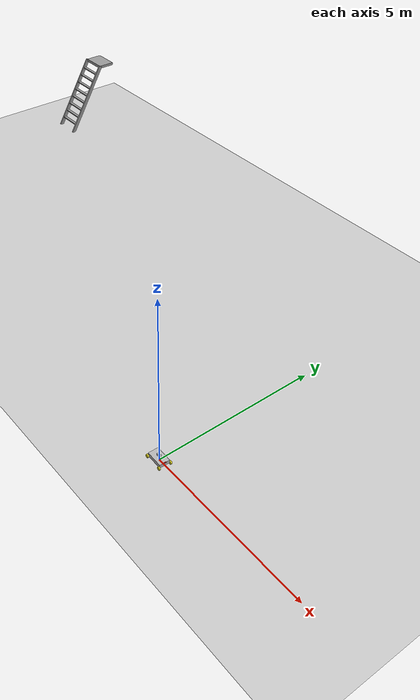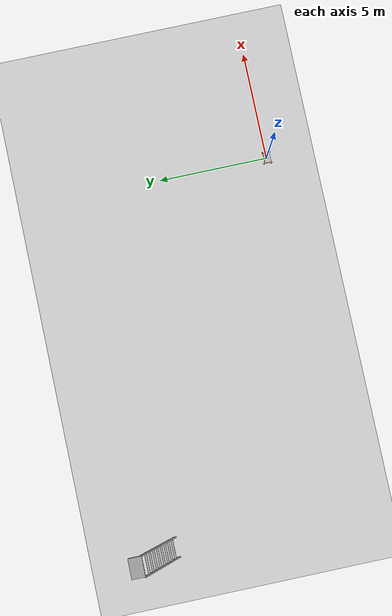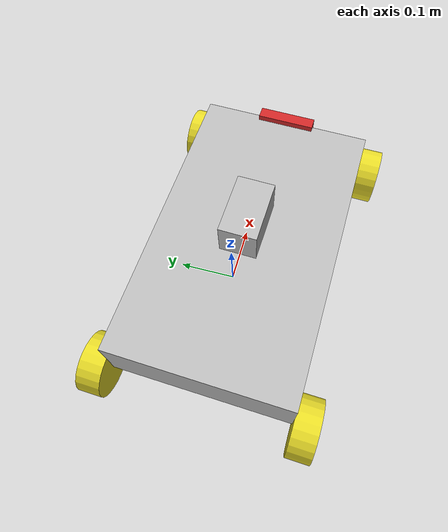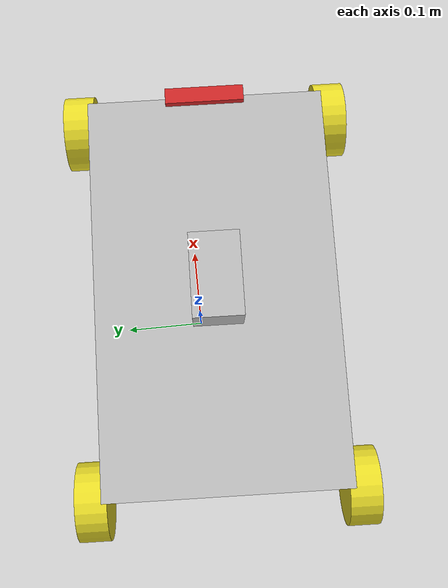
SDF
<sdf version="1.7">
 <world name="default">
  <light name="sun" type="directional">
   <pose>0 0 10 0 -0 0</pose>
   <diffuse>0.8 0.8 0.8 1</diffuse>
   <specular>0.2 0.2 0.2 1</specular>
   <attenuation>
    <range>1000</range>
    <constant>0.9</constant>
    <linear>0.01</linear>
    <quadratic>0.001</quadratic>
   </attenuation>
   <direction>-0.5 0.1 -0.9</direction>
   <spot><inner_angle>0</inner_angle><outer_angle>0</outer_angle><falloff>0</falloff></spot>
  </light>
  <model name="ground_plane">
   <static>1</static>
   <link name="link">
    <collision name="collision">
     <geometry><plane><normal>0 0 1</normal><size>100 100</size></plane></geometry>
     <surface><friction><ode><mu>100</mu><mu2>50</mu2></ode></friction></surface>
    </collision>
    <visual name="visual">
     <cast_shadows>0</cast_shadows>
     <geometry><plane><normal>0 0 1</normal><size>100 100</size></plane></geometry>
     <material>
      <script><uri>file://media/materials/scripts/gazebo.material</uri><name>Gazebo/Grey</name></script>
     </material>
    </visual>
   </link>
  </model>
  <gravity>0 0 -9.8</gravity>
  <magnetic_field>6e-06 2.3e-05 -4.2e-05</magnetic_field>
  <atmosphere type="adiabatic"/>
  <physics type="ode">
   <max_step_size>0.001</max_step_size>
   <real_time_factor>1</real_time_factor>
   <real_time_update_rate>1000</real_time_update_rate>
  </physics>
  <scene><ambient>0.4 0.4 0.4 1</ambient><background>0.7 0.7 0.7 1</background><shadows>1</shadows></scene>
  <audio><device>default</device></audio>
  <spherical_coordinates>
   <surface_model>EARTH_WGS84</surface_model>
   <latitude_deg>0</latitude_deg>
   <longitude_deg>0</longitude_deg>
   <elevation>0</elevation>
   <heading_deg>0</heading_deg>
  </spherical_coordinates>
  <model name="ladder_60deg_0rails">
   <static>1</static>
   <link name="step0">
    <pose>0 0.15396 0.266667 0 -0 0</pose>
    <inertial>
     <mass>9.75482</mass>
     <inertia>
      <ixx>0.00957124</ixx>
      <iyy>0.65963</iyy>
      <izz>0.666842</izz>
      <ixy>0</ixy>
      <ixz>0</ixz>
      <iyz>0</iyz>
     </inertia>
    </inertial>
    <collision name="collision"><geometry><box><size>0.9 0.1016 0.0381</size></box></geometry></collision>
    <visual name="visual">
     <geometry><box><size>0.9 0.1016 0.0381</size></box></geometry>
     <material>
      <script><uri>file://media/materials/scripts/gazebo.material</uri><name>Gazebo/Grey</name></script>
     </material>
    </visual>
   </link>
   <link name="step1">
    <pose>0 0.30792 0.533333 0 -0 0</pose>
    <inertial>
     <mass>9.75482</mass>
     <inertia>
      <ixx>0.00957124</ixx>
      <iyy>0.65963</iyy>
      <izz>0.666842</izz>
      <ixy>0</ixy>
      <ixz>0</ixz>
      <iyz>0</iyz>
     </inertia>
    </inertial>
    <collision name="collision"><geometry><box><size>0.9 0.1016 0.0381</size></box></geometry></collision>
    <visual name="visual">
     <geometry><box><size>0.9 0.1016 0.0381</size></box></geometry>
     <material>
      <script><uri>file://media/materials/scripts/gazebo.material</uri><name>Gazebo/Grey</name></script>
     </material>
    </visual>
   </link>
   <link name="step2">
    <pose>0 0.46188 0.8 0 -0 0</pose>
    <inertial>
     <mass>9.75482</mass>
     <inertia>
      <ixx>0.00957124</ixx>
      <iyy>0.65963</iyy>
      <izz>0.666842</izz>
      <ixy>0</ixy>
      <ixz>0</ixz>
      <iyz>0</iyz>
     </inertia>
    </inertial>
    <collision name="collision"><geometry><box><size>0.9 0.1016 0.0381</size></box></geometry></collision>
    <visual name="visual">
     <geometry><box><size>0.9 0.1016 0.0381</size></box></geometry>
     <material>
      <script><uri>file://media/materials/scripts/gazebo.material</uri><name>Gazebo/Grey</name></script>
     </material>
    </visual>
   </link>
   <link name="step3">
    <pose>0 0.61584 1.06667 0 -0 0</pose>
    <inertial>
     <mass>9.75482</mass>
     <inertia>
      <ixx>0.00957124</ixx>
      <iyy>0.65963</iyy>
      <izz>0.666842</izz>
      <ixy>0</ixy>
      <ixz>0</ixz>
      <iyz>0</iyz>
     </inertia>
    </inertial>
    <collision name="collision"><geometry><box><size>0.9 0.1016 0.0381</size></box></geometry></collision>
    <visual name="visual">
     <geometry><box><size>0.9 0.1016 0.0381</size></box></geometry>
     <material>
      <script><uri>file://media/materials/scripts/gazebo.material</uri><name>Gazebo/Grey</name></script>
     </material>
    </visual>
   </link>
   <link name="step4">
    <pose>0 0.7698 1.33333 0 -0 0</pose>
    <inertial>
     <mass>9.75482</mass>
     <inertia>
      <ixx>0.00957124</ixx>
      <iyy>0.65963</iyy>
      <izz>0.666842</izz>
      <ixy>0</ixy>
      <ixz>0</ixz>
      <iyz>0</iyz>
     </inertia>
    </inertial>
    <collision name="collision"><geometry><box><size>0.9 0.1016 0.0381</size></box></geometry></collision>
    <visual name="visual">
     <geometry><box><size>0.9 0.1016 0.0381</size></box></geometry>
     <material>
      <script><uri>file://media/materials/scripts/gazebo.material</uri><name>Gazebo/Grey</name></script>
     </material>
    </visual>
   </link>
   <link name="step5">
    <pose>0 0.92376 1.6 0 -0 0</pose>
    <inertial>
     <mass>9.75482</mass>
     <inertia>
      <ixx>0.00957124</ixx>
      <iyy>0.65963</iyy>
      <izz>0.666842</izz>
      <ixy>0</ixy>
      <ixz>0</ixz>
      <iyz>0</iyz>
     </inertia>
    </inertial>
    <collision name="collision"><geometry><box><size>0.9 0.1016 0.0381</size></box></geometry></collision>
    <visual name="visual">
     <geometry><box><size>0.9 0.1016 0.0381</size></box></geometry>
     <material>
      <script><uri>file://media/materials/scripts/gazebo.material</uri><name>Gazebo/Grey</name></script>
     </material>
    </visual>
   </link>
   <link name="step6">
    <pose>0 1.07772 1.86667 0 -0 0</pose>
    <inertial>
     <mass>9.75482</mass>
     <inertia>
      <ixx>0.00957124</ixx>
      <iyy>0.65963</iyy>
      <izz>0.666842</izz>
      <ixy>0</ixy>
      <ixz>0</ixz>
      <iyz>0</iyz>
     </inertia>
    </inertial>
    <collision name="collision"><geometry><box><size>0.9 0.1016 0.0381</size></box></geometry></collision>
    <visual name="visual">
     <geometry><box><size>0.9 0.1016 0.0381</size></box></geometry>
     <material>
      <script><uri>file://media/materials/scripts/gazebo.material</uri><name>Gazebo/Grey</name></script>
     </material>
    </visual>
   </link>
   <link name="step7">
    <pose>0 1.23168 2.13333 0 -0 0</pose>
    <inertial>
     <mass>9.75482</mass>
     <inertia>
      <ixx>0.00957124</ixx>
      <iyy>0.65963</iyy>
      <izz>0.666842</izz>
      <ixy>0</ixy>
      <ixz>0</ixz>
      <iyz>0</iyz>
     </inertia>
    </inertial>
    <collision name="collision"><geometry><box><size>0.9 0.1016 0.0381</size></box></geometry></collision>
    <visual name="visual">
     <geometry><box><size>0.9 0.1016 0.0381</size></box></geometry>
     <material>
      <script><uri>file://media/materials/scripts/gazebo.material</uri><name>Gazebo/Grey</name></script>
     </material>
    </visual>
   </link>
   <link name="landing">
    <pose>0 1.68564 2.4 0 -0 0</pose>
    <inertial>
     <mass>57.6072</mass>
     <inertia><ixx>1.73518</ixx><iyy>3.89545</iyy><izz>5.6167</izz><ixy>0</ixy><ixz>0</ixz><iyz>0</iyz></inertia>
    </inertial>
    <collision name="collision"><geometry><box><size>0.9 0.6 0.1016</size></box></geometry></collision>
    <visual name="visual">
     <geometry><box><size>0.9 0.6 0.1016</size></box></geometry>
     <material>
      <script><uri>file://media/materials/scripts/gazebo.material</uri><name>Gazebo/Grey</name></script>
     </material>
    </visual>
   </link>
   <link name="left_side_wall">
    <pose>-0.45 0.69282 1.2 1.0472 -0 0</pose>
    <collision name="collision"><geometry><box><size>0.0508 2.85128 0.13</size></box></geometry></collision>
    <visual name="visual">
     <geometry><box><size>0.0508 2.85128 0.13</size></box></geometry>
     <material>
      <script><uri>file://media/materials/scripts/gazebo.material</uri><name>Gazebo/Grey</name></script>
     </material>
    </visual>
   </link>
   <link name="right_side_wall">
    <pose>0.45 0.69282 1.2 1.0472 -0 0</pose>
    <collision name="collision"><geometry><box><size>0.0508 2.85128 0.13</size></box></geometry></collision>
    <visual name="visual">
     <geometry><box><size>0.0508 2.85128 0.13</size></box></geometry>
     <material>
      <script><uri>file://media/materials/scripts/gazebo.material</uri><name>Gazebo/Grey</name></script>
     </material>
    </visual>
   </link>
   <pose>-16.4641 7.71086 0 0 -0 0</pose>
  </model>
  <model name="robot">
   <link name="base_link">
    <inertial>
     <pose>0.02 0 0.0128 0 -0 0</pose>
     <mass>1.25</mass>
     <inertia>
      <ixx>0.0231319</ixx>
      <ixy>1.51081e-20</ixy>
      <ixz>-0.00093</ixz>
      <iyy>0.0353519</iyy>
      <iyz>4.27978e-36</iyz>
      <izz>0.0146167</izz>
     </inertia>
    </inertial>
    <collision name="base_link_collision"><geometry><box><size>0.5 0.3 0.1</size></box></geometry></collision>
    <collision name="base_link_fixed_joint_lump__camera_link_collision_1">
     <pose>0.25 0 0.05 0 -0 0</pose>
     <geometry><box><size>0.02 0.1 0.02</size></box></geometry>
    </collision>
    <collision name="base_link_fixed_joint_lump__imu_link_collision_2">
     <pose>0 0 0.02 0 -0 0</pose>
     <geometry><box><size>0.02 0.02 0.02</size></box></geometry>
    </collision>
    <visual name="base_link_visual"><geometry><box><size>0.5 0.3 0.1</size></box></geometry></visual>
    <visual name="base_link_fixed_joint_lump__camera_link_visual_1">
     <pose>0.25 0 0.05 0 -0 0</pose>
     <geometry><box><size>0.02 0.1 0.02</size></box></geometry>
     <material>
      <script><name>Gazebo/Red</name><uri>file://media/materials/scripts/gazebo.material</uri></script>
     </material>
    </visual>
    <visual name="base_link_fixed_joint_lump__imu_link_visual_2">
     <pose>0 0 0.02 0 -0 0</pose>
     <geometry><box><size>0.02 0.02 0.02</size></box></geometry>
     <material>
      <script><name>Gazebo/Black</name><uri>file://media/materials/scripts/gazebo.material</uri></script>
     </material>
    </visual>
    <visual name="base_link_fixed_joint_lump__livox_link_visual_3">
     <pose>0 0 0.1 0 -0 0</pose>
     <geometry><box><size>0.1 0.06 0.06</size></box></geometry>
    </visual>
    <sensor name="imu_sensor" type="imu">
     <plugin name="imu_plugin" filename="libgazebo_ros_imu_sensor.so">
      <ros><namespace>/</namespace><remapping>~/out:=imu_raw</remapping></ros>
      <initial_orientation_as_reference>1</initial_orientation_as_reference>
     </plugin>
     <update_rate>200</update_rate>
     <always_on>1</always_on>
     <imu>
      <angular_velocity>
       <x>
        <noise type="gaussian">
         <mean>0</mean>
         <stddev>0</stddev>
         <bias_mean>0</bias_mean>
         <bias_stddev>0</bias_stddev>
        </noise>
       </x>
       <y>
        <noise type="gaussian">
         <mean>0</mean>
         <stddev>0</stddev>
         <bias_mean>0</bias_mean>
         <bias_stddev>0</bias_stddev>
        </noise>
       </y>
       <z>
        <noise type="gaussian">
         <mean>0</mean>
         <stddev>0</stddev>
         <bias_mean>0</bias_mean>
         <bias_stddev>0</bias_stddev>
        </noise>
       </z>
      </angular_velocity>
      <linear_acceleration>
       <x>
        <noise type="gaussian">
         <mean>0</mean>
         <stddev>0</stddev>
         <bias_mean>0</bias_mean>
         <bias_stddev>0</bias_stddev>
        </noise>
       </x>
       <y>
        <noise type="gaussian">
         <mean>0</mean>
         <stddev>0</stddev>
         <bias_mean>0</bias_mean>
         <bias_stddev>0</bias_stddev>
        </noise>
       </y>
       <z>
        <noise type="gaussian">
         <mean>0</mean>
         <stddev>0</stddev>
         <bias_mean>0</bias_mean>
         <bias_stddev>0</bias_stddev>
        </noise>
       </z>
      </linear_acceleration>
     </imu>
     <pose>0 0 0.02 0 -0 0</pose>
    </sensor>
    <sensor name="livox_link" type="ray">
     <visualize>1</visualize>
     <update_rate>10</update_rate>
     <plugin name="livox_link_plugin" filename="libros2_livox.so">
      <ray>
       <scan>
        <horizontal>
         <samples>100</samples>
         <resolution>1</resolution>
         <min_angle>0</min_angle>
         <max_angle>6.2831852</max_angle>
        </horizontal>
        <vertical>
         <samples>360</samples>
         <resolution>1</resolution>
         <min_angle>-0.12601276984444446</min_angle>
         <max_angle>0.9637707965111111</max_angle>
        </vertical>
       </scan>
       <range><min>0.1</min><max>200.0</max><resolution>0.002</resolution></range>
       <noise><type>gaussian</type><mean>0.0</mean><stddev>0.002</stddev></noise>
      </ray>
      <visualize>0</visualize>
      <samples>30000</samples>
      <downsample>1</downsample>
      <csv_file_name>/home/akun/workspace/CAR/1_URDF_ws/install/ros2_livox_simulation/share/ros2_livox_simulation/scan_mode/mid360.csv</csv_file_name>
      <topic>livox</topic>
     </plugin>
     <pose>0 0 0.1 0 -0 0</pose>
     <ray>
      <scan>
       <horizontal>
        <samples>640</samples>
        <resolution>1</resolution>
        <min_angle>0</min_angle>
        <max_angle>0</max_angle>
       </horizontal>
       <vertical><samples>1</samples><min_angle>0</min_angle><max_angle>0</max_angle></vertical>
      </scan>
      <range><min>0</min><max>0</max></range>
     </ray>
    </sensor>
   </link>
   <joint name="wheel_1_joint" type="revolute">
    <pose relative_to="base_link">0.25 0.17 -0.05 0 -0 0</pose>
    <parent>base_link</parent>
    <child>wheel_1_link</child>
    <axis>
     <xyz>0 1 0</xyz>
     <limit><lower>-100</lower><upper>100</upper><effort>100</effort><velocity>10</velocity></limit>
     <dynamics><spring_reference>0</spring_reference><spring_stiffness>0</spring_stiffness></dynamics>
    </axis>
   </joint>
   <link name="wheel_1_link">
    <pose relative_to="wheel_1_joint">0 0 0 0 -0 0</pose>
    <inertial>
     <mass>0.05</mass>
     <inertia>
      <ixx>3.79167e-05</ixx>
      <ixy>0</ixy>
      <ixz>0</ixz>
      <iyy>3.79167e-05</iyy>
      <iyz>0</iyz>
      <izz>6.25e-05</izz>
     </inertia>
    </inertial>
    <collision name="wheel_1_link_collision">
     <pose>0 0 0 1.57079 -0 0</pose>
     <geometry><cylinder><length>0.04</length><radius>0.05</radius></cylinder></geometry>
     <surface>
      <contact><ode><kp>1e+09</kp><kd>1</kd></ode></contact>
      <friction><ode><mu>0</mu><mu2>0</mu2></ode></friction>
     </surface>
    </collision>
    <visual name="wheel_1_link_visual">
     <pose>0 0 0 1.57079 -0 0</pose>
     <geometry><cylinder><length>0.04</length><radius>0.05</radius></cylinder></geometry>
     <material>
      <script><name>Gazebo/Yellow</name><uri>file://media/materials/scripts/gazebo.material</uri></script>
     </material>
    </visual>
   </link>
   <joint name="wheel_2_joint" type="revolute">
    <pose relative_to="base_link">-0.25 0.17 -0.05 0 -0 0</pose>
    <parent>base_link</parent>
    <child>wheel_2_link</child>
    <axis>
     <xyz>0 1 0</xyz>
     <limit><effort>100</effort><velocity>10</velocity><lower>-1e+16</lower><upper>1e+16</upper></limit>
     <dynamics><spring_reference>0</spring_reference><spring_stiffness>0</spring_stiffness></dynamics>
    </axis>
   </joint>
   <link name="wheel_2_link">
    <pose relative_to="wheel_2_joint">0 0 0 0 -0 0</pose>
    <inertial>
     <mass>0.05</mass>
     <inertia>
      <ixx>3.79167e-05</ixx>
      <ixy>0</ixy>
      <ixz>0</ixz>
      <iyy>3.79167e-05</iyy>
      <iyz>0</iyz>
      <izz>6.25e-05</izz>
     </inertia>
    </inertial>
    <collision name="wheel_2_link_collision">
     <pose>0 0 0 1.57079 -0 0</pose>
     <geometry><cylinder><length>0.04</length><radius>0.05</radius></cylinder></geometry>
     <surface>
      <contact><ode><kp>1e+09</kp><kd>1</kd></ode></contact>
      <friction><ode><mu>5</mu><mu2>5</mu2></ode></friction>
     </surface>
    </collision>
    <visual name="wheel_2_link_visual">
     <pose>0 0 0 1.57079 -0 0</pose>
     <geometry><cylinder><length>0.04</length><radius>0.05</radius></cylinder></geometry>
     <material>
      <script><name>Gazebo/Yellow</name><uri>file://media/materials/scripts/gazebo.material</uri></script>
     </material>
    </visual>
   </link>
   <joint name="wheel_3_joint" type="revolute">
    <pose relative_to="base_link">0.25 -0.17 -0.05 0 -0 0</pose>
    <parent>base_link</parent>
    <child>wheel_3_link</child>
    <axis>
     <xyz>0 1 0</xyz>
     <limit><lower>-100</lower><upper>100</upper><effort>100</effort><velocity>10</velocity></limit>
     <dynamics><spring_reference>0</spring_reference><spring_stiffness>0</spring_stiffness></dynamics>
    </axis>
   </joint>
   <link name="wheel_3_link">
    <pose relative_to="wheel_3_joint">0 0 0 0 -0 0</pose>
    <inertial>
     <mass>0.05</mass>
     <inertia>
      <ixx>3.79167e-05</ixx>
      <ixy>0</ixy>
      <ixz>0</ixz>
      <iyy>3.79167e-05</iyy>
      <iyz>0</iyz>
      <izz>6.25e-05</izz>
     </inertia>
    </inertial>
    <collision name="wheel_3_link_collision">
     <pose>0 0 0 1.57079 -0 0</pose>
     <geometry><cylinder><length>0.04</length><radius>0.05</radius></cylinder></geometry>
     <surface>
      <contact><ode><kp>1e+09</kp><kd>1</kd></ode></contact>
      <friction><ode><mu>0</mu><mu2>0</mu2></ode></friction>
     </surface>
    </collision>
    <visual name="wheel_3_link_visual">
     <pose>0 0 0 1.57079 -0 0</pose>
     <geometry><cylinder><length>0.04</length><radius>0.05</radius></cylinder></geometry>
     <material>
      <script><name>Gazebo/Yellow</name><uri>file://media/materials/scripts/gazebo.material</uri></script>
     </material>
    </visual>
   </link>
   <joint name="wheel_4_joint" type="revolute">
    <pose relative_to="base_link">-0.25 -0.17 -0.05 0 -0 0</pose>
    <parent>base_link</parent>
    <child>wheel_4_link</child>
    <axis>
     <xyz>0 1 0</xyz>
     <limit><effort>100</effort><velocity>10</velocity><lower>-1e+16</lower><upper>1e+16</upper></limit>
     <dynamics><spring_reference>0</spring_reference><spring_stiffness>0</spring_stiffness></dynamics>
    </axis>
   </joint>
   <link name="wheel_4_link">
    <pose relative_to="wheel_4_joint">0 0 0 0 -0 0</pose>
    <inertial>
     <mass>0.05</mass>
     <inertia>
      <ixx>3.79167e-05</ixx>
      <ixy>0</ixy>
      <ixz>0</ixz>
      <iyy>3.79167e-05</iyy>
      <iyz>0</iyz>
      <izz>6.25e-05</izz>
     </inertia>
    </inertial>
    <collision name="wheel_4_link_collision">
     <pose>0 0 0 1.57079 -0 0</pose>
     <geometry><cylinder><length>0.04</length><radius>0.05</radius></cylinder></geometry>
     <surface>
      <contact><ode><kp>1e+09</kp><kd>1</kd></ode></contact>
      <friction><ode><mu>5</mu><mu2>5</mu2></ode></friction>
     </surface>
    </collision>
    <visual name="wheel_4_link_visual">
     <pose>0 0 0 1.57079 -0 0</pose>
     <geometry><cylinder><length>0.04</length><radius>0.05</radius></cylinder></geometry>
     <material>
      <script><name>Gazebo/Yellow</name><uri>file://media/materials/scripts/gazebo.material</uri></script>
     </material>
    </visual>
   </link>
   <static>0</static>
   <plugin name="diff_drive" filename="libgazebo_ros_diff_drive.so">
    <ros>
     <namespace>/</namespace>
     <remapping>cmd_vel:=cmd_vel_smooth</remapping>
     <remapping>odom:=odom</remapping>
    </ros>
    <update_rate>30</update_rate>
    <left_joint>wheel_2_joint</left_joint>
    <right_joint>wheel_4_joint</right_joint>
    <wheel_separation>0.3</wheel_separation>
    <wheel_diameter>0.10</wheel_diameter>
    <max_wheel_torque>1000</max_wheel_torque>
    <max_wheel_acceleration>5.0</max_wheel_acceleration>
    <publish_odom>1</publish_odom>
    <publish_odom_tf>ytue</publish_odom_tf>
    <publish_wheel_tf>1</publish_wheel_tf>
    <odometry_frame>odom</odometry_frame>
    <robot_base_frame>base_link</robot_base_frame>
   </plugin>
   <pose>0.018498 -0.022678 0.1 0 0 -0.035149</pose>
  </model>
 </world>
</sdf>
